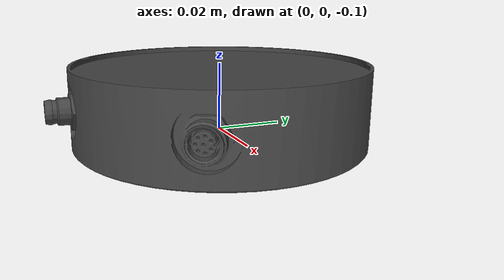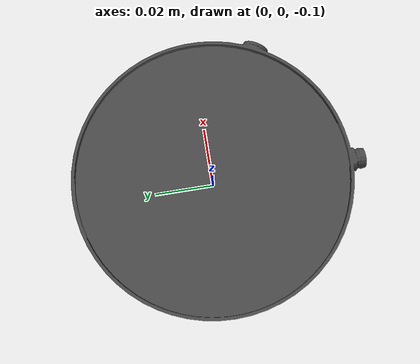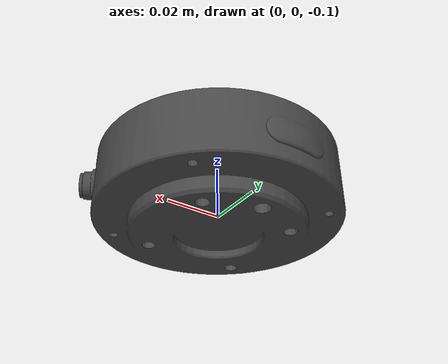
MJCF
<mujoco model="LINK_20">
  <default>
    <default class="visual">
      <geom group="2" type="mesh" contype="0" conaffinity="0"/>
    </default>
    <default class="collision">
      <geom group="3" type="mesh"/>
    </default>
  </default>
  <asset>
    <material name="69,69,69" specular="1.0" shininess="1.0" rgba="0.270588 0.270588 0.270588 1.000000"/>
    <mesh file="LINK_20.obj"/>
    <mesh file="LINK_20_collision_0.obj"/>
    <mesh file="LINK_20_collision_1.obj"/>
    <mesh file="LINK_20_collision_2.obj"/>
    <mesh file="LINK_20_collision_3.obj"/>
    <mesh file="LINK_20_collision_4.obj"/>
    <mesh file="LINK_20_collision_5.obj"/>
    <mesh file="LINK_20_collision_6.obj"/>
    <mesh file="LINK_20_collision_7.obj"/>
    <mesh file="LINK_20_collision_8.obj"/>
    <mesh file="LINK_20_collision_9.obj"/>
    <mesh file="LINK_20_collision_10.obj"/>
    <mesh file="LINK_20_collision_11.obj"/>
    <mesh file="LINK_20_collision_12.obj"/>
    <mesh file="LINK_20_collision_13.obj"/>
    <mesh file="LINK_20_collision_14.obj"/>
    <mesh file="LINK_20_collision_15.obj"/>
    <mesh file="LINK_20_collision_16.obj"/>
    <mesh file="LINK_20_collision_17.obj"/>
    <mesh file="LINK_20_collision_18.obj"/>
    <mesh file="LINK_20_collision_19.obj"/>
    <mesh file="LINK_20_collision_20.obj"/>
    <mesh file="LINK_20_collision_21.obj"/>
    <mesh file="LINK_20_collision_22.obj"/>
    <mesh file="LINK_20_collision_23.obj"/>
    <mesh file="LINK_20_collision_24.obj"/>
    <mesh file="LINK_20_collision_25.obj"/>
    <mesh file="LINK_20_collision_26.obj"/>
    <mesh file="LINK_20_collision_27.obj"/>
    <mesh file="LINK_20_collision_28.obj"/>
    <mesh file="LINK_20_collision_29.obj"/>
    <mesh file="LINK_20_collision_30.obj"/>
    <mesh file="LINK_20_collision_31.obj"/>
    <mesh file="LINK_20_collision_32.obj"/>
    <mesh file="LINK_20_collision_33.obj"/>
    <mesh file="LINK_20_collision_34.obj"/>
    <mesh file="LINK_20_collision_35.obj"/>
    <mesh file="LINK_20_collision_36.obj"/>
    <mesh file="LINK_20_collision_37.obj"/>
    <mesh file="LINK_20_collision_38.obj"/>
    <mesh file="LINK_20_collision_39.obj"/>
    <mesh file="LINK_20_collision_40.obj"/>
    <mesh file="LINK_20_collision_41.obj"/>
    <mesh file="LINK_20_collision_42.obj"/>
    <mesh file="LINK_20_collision_43.obj"/>
    <mesh file="LINK_20_collision_44.obj"/>
    <mesh file="LINK_20_collision_45.obj"/>
    <mesh file="LINK_20_collision_46.obj"/>
    <mesh file="LINK_20_collision_47.obj"/>
    <mesh file="LINK_20_collision_48.obj"/>
  </asset>
  <worldbody>
    <body name="LINK_20">
      <geom material="69,69,69" mesh="LINK_20" class="visual"/>
      <geom mesh="LINK_20_collision_0" rgba="0.06444226794881869 0.332411263519685 0.8718437121200353 1" class="collision"/>
      <geom mesh="LINK_20_collision_1" rgba="0.9856122814134564 0.5809158616691511 0.5749288654981634 1" class="collision"/>
      <geom mesh="LINK_20_collision_2" rgba="0.04983187655273669 0.050040140349013384 0.23548844237064026 1" class="collision"/>
      <geom mesh="LINK_20_collision_3" rgba="0.2412209014088076 0.7405090539601967 0.39712341426193853 1" class="collision"/>
      <geom mesh="LINK_20_collision_4" rgba="0.1945767214261418 0.26305562984879216 0.3493367186785682 1" class="collision"/>
      <geom mesh="LINK_20_collision_5" rgba="0.27210612661700173 0.15557960262734027 0.15019833166073282 1" class="collision"/>
      <geom mesh="LINK_20_collision_6" rgba="0.2428578261712635 0.6844230347748376 0.766857354026032 1" class="collision"/>
      <geom mesh="LINK_20_collision_7" rgba="0.8003397486210728 0.45464446665324454 0.6032431351466981 1" class="collision"/>
      <geom mesh="LINK_20_collision_8" rgba="0.5539876407240546 0.7564426361659434 0.6373708046662312 1" class="collision"/>
      <geom mesh="LINK_20_collision_9" rgba="0.7422230098441416 0.9156303007690528 0.7190504073452513 1" class="collision"/>
      <geom mesh="LINK_20_collision_10" rgba="0.11539416563202709 0.8250156915194785 0.8914431727369165 1" class="collision"/>
      <geom mesh="LINK_20_collision_11" rgba="0.6511117253647047 0.3296727166709488 0.1471889251423938 1" class="collision"/>
      <geom mesh="LINK_20_collision_12" rgba="0.35017329161120303 0.46323588635024016 0.22069911528150654 1" class="collision"/>
      <geom mesh="LINK_20_collision_13" rgba="0.3957541546910551 0.8514693014343687 0.5638401763256815 1" class="collision"/>
      <geom mesh="LINK_20_collision_14" rgba="0.23844978733896827 0.06185746226584876 0.7425616952331944 1" class="collision"/>
      <geom mesh="LINK_20_collision_15" rgba="0.9670505125383405 0.4889601949169633 0.41758270845734535 1" class="collision"/>
      <geom mesh="LINK_20_collision_16" rgba="0.38225156291571016 0.27703894575956933 0.34807576660251016 1" class="collision"/>
      <geom mesh="LINK_20_collision_17" rgba="0.20262746724368907 0.3014389582923518 0.32073965929544757 1" class="collision"/>
      <geom mesh="LINK_20_collision_18" rgba="0.48089524235942405 0.8128920085884943 0.8053206181367661 1" class="collision"/>
      <geom mesh="LINK_20_collision_19" rgba="0.24400638675240527 0.7833817891404405 0.4917674310978515 1" class="collision"/>
      <geom mesh="LINK_20_collision_20" rgba="0.06295846261025984 0.4234782819155072 0.5363479449478225 1" class="collision"/>
      <geom mesh="LINK_20_collision_21" rgba="0.15627585434044067 0.13777123839030814 0.4377919654330482 1" class="collision"/>
      <geom mesh="LINK_20_collision_22" rgba="0.8077478283666223 0.12332515860535487 0.6243201135742871 1" class="collision"/>
      <geom mesh="LINK_20_collision_23" rgba="0.7136461732105142 0.8746139870500939 0.5460700312286177 1" class="collision"/>
      <geom mesh="LINK_20_collision_24" rgba="0.1430317844051575 0.46200416260554367 0.514716857869143 1" class="collision"/>
      <geom mesh="LINK_20_collision_25" rgba="0.2885663438461167 0.2743375323440783 0.48700442281003464 1" class="collision"/>
      <geom mesh="LINK_20_collision_26" rgba="0.3760177574267656 0.7793279402472758 0.6718119078044427 1" class="collision"/>
      <geom mesh="LINK_20_collision_27" rgba="0.2583970639795805 0.3032772267492867 0.8101441059795833 1" class="collision"/>
      <geom mesh="LINK_20_collision_28" rgba="0.44907794819866875 0.09384484832888851 0.5783417748938174 1" class="collision"/>
      <geom mesh="LINK_20_collision_29" rgba="0.9210067711033646 0.9726928131340893 0.23863490197032855 1" class="collision"/>
      <geom mesh="LINK_20_collision_30" rgba="0.4774682350514917 0.7561065073761483 0.5219298281637873 1" class="collision"/>
      <geom mesh="LINK_20_collision_31" rgba="0.557873390600223 0.07401566062214315 0.4852390488499838 1" class="collision"/>
      <geom mesh="LINK_20_collision_32" rgba="0.5447571448509 0.9849403700534122 0.5458264122083331 1" class="collision"/>
      <geom mesh="LINK_20_collision_33" rgba="0.47426757942918407 0.12454747889618611 0.4117704461806502 1" class="collision"/>
      <geom mesh="LINK_20_collision_34" rgba="0.5772706288095903 0.11664369036121569 0.7070239697793991 1" class="collision"/>
      <geom mesh="LINK_20_collision_35" rgba="0.0743223534598545 0.2707899061896366 0.732114975017418 1" class="collision"/>
      <geom mesh="LINK_20_collision_36" rgba="0.9253965156847216 0.5422522459865171 0.5350354695025167 1" class="collision"/>
      <geom mesh="LINK_20_collision_37" rgba="0.9737596807295961 0.5262519281451105 0.5563326119168573 1" class="collision"/>
      <geom mesh="LINK_20_collision_38" rgba="0.6680581800490427 0.41760524523742426 0.8874083268627505 1" class="collision"/>
      <geom mesh="LINK_20_collision_39" rgba="0.250465007057743 0.5040591175497049 0.6360810016837573 1" class="collision"/>
      <geom mesh="LINK_20_collision_40" rgba="0.9319503671558556 0.08180868073216019 0.41731621781168105 1" class="collision"/>
      <geom mesh="LINK_20_collision_41" rgba="0.7807642199360973 0.00605046487323091 0.8978800461703281 1" class="collision"/>
      <geom mesh="LINK_20_collision_42" rgba="0.12536557427839468 0.9346605950302752 0.7694500545733813 1" class="collision"/>
      <geom mesh="LINK_20_collision_43" rgba="0.5866042360712511 0.7005163714296088 0.17506561674803545 1" class="collision"/>
      <geom mesh="LINK_20_collision_44" rgba="0.12947448155210584 0.45676557698538445 0.3517909102171204 1" class="collision"/>
      <geom mesh="LINK_20_collision_45" rgba="0.8173063395233885 0.8020761923567984 0.14982322536477166 1" class="collision"/>
      <geom mesh="LINK_20_collision_46" rgba="0.5595385413464578 0.9417681061713439 0.7471991160622108 1" class="collision"/>
      <geom mesh="LINK_20_collision_47" rgba="0.14850055072911017 0.9187786542823169 0.14416343957464928 1" class="collision"/>
      <geom mesh="LINK_20_collision_48" rgba="0.9825164519666397 0.9945594277102787 0.26853327643547253 1" class="collision"/>
    </body>
  </worldbody>
</mujoco>
